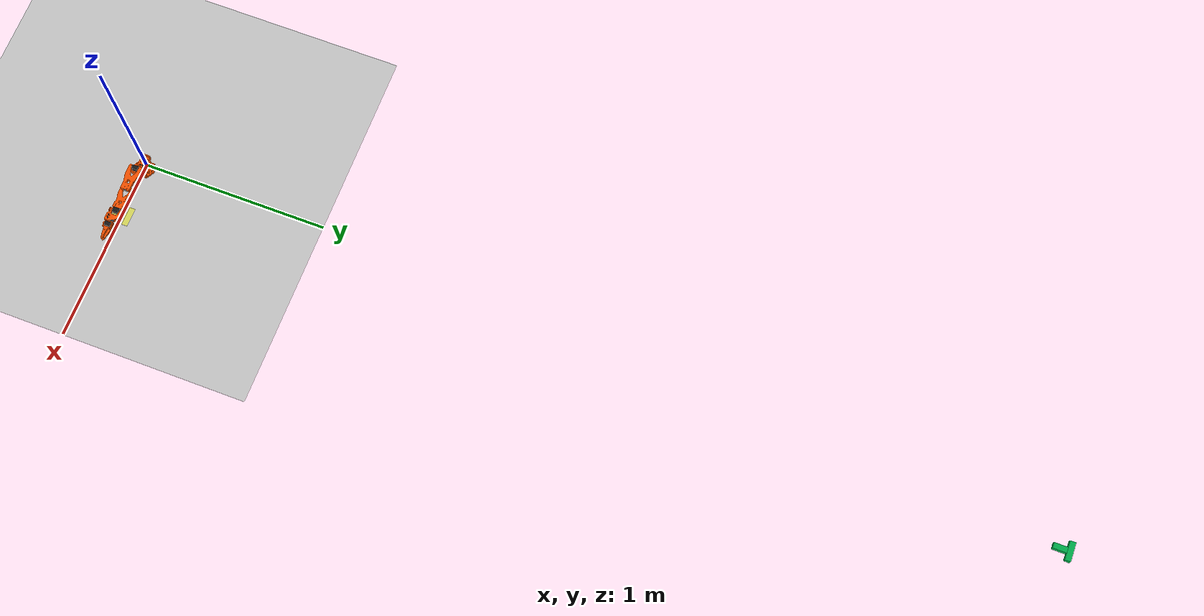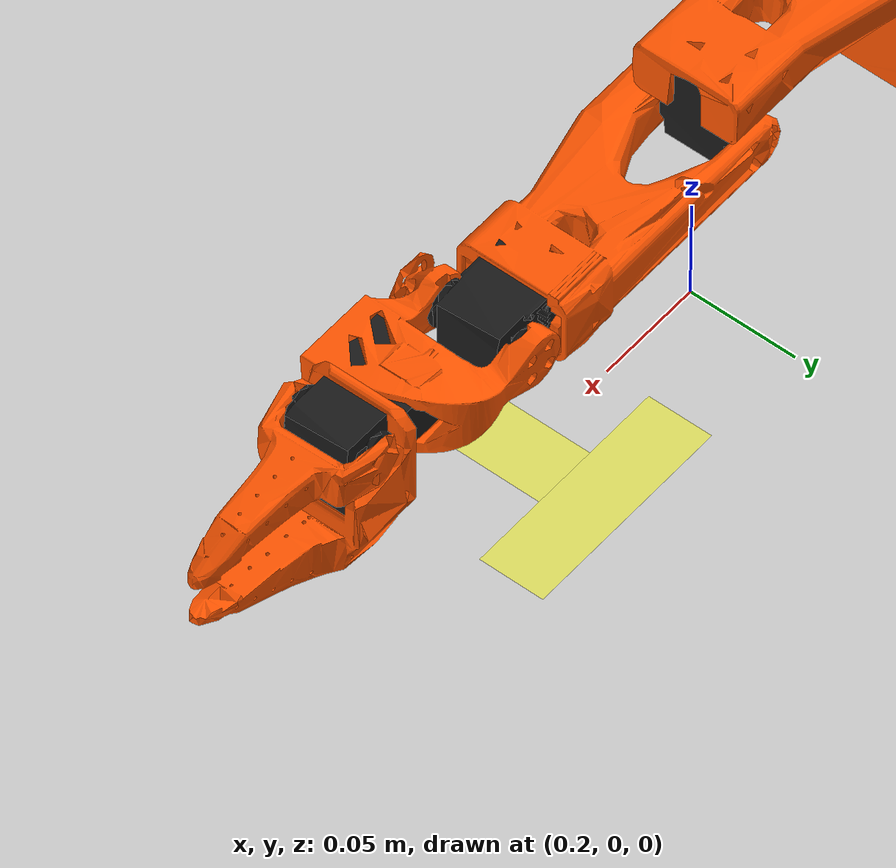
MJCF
<mujoco model="so_arm100 scene">
  <include file="so_arm100.xml"/>

  <statistic center="0 -0.2 0.1" extent="0.4"/>

  <visual>
    <headlight diffuse="0.6 0.6 0.6" ambient="0.3 0.3 0.3" specular="0 0 0"/>
    <rgba haze="0.15 0.25 0.35 1"/>
    <global azimuth="140" elevation="-30"/>
  </visual>

  <asset>
    <texture type="skybox" builtin="gradient" rgb1="0.3 0.5 0.7" rgb2="0 0 0" width="512" height="3072"/>
    <texture type="2d" name="groundplane" builtin="checker" mark="edge" rgb1="0.2 0.3 0.4" rgb2="0.1 0.2 0.3"
      markrgb="0.8 0.8 0.8" width="300" height="300"/>
    <material name="groundplane" texture="groundplane" texuniform="true" texrepeat="5 5" reflectance="0.2"/>
  </asset>
    <worldbody>
    <light directional="true" diffuse=".8 .8 .8" specular=".2 .2 .2" pos="0 0 5" dir="0 0 -1"/>
    <geom name="floor" type="plane" size="1 1 .05" pos="0 0 0" rgba=".8 .8 .8 1"/>
    <body name="T_block" pos="0.3 5 0.05">
      <freejoint name="object_joint"/>
      <site name="T_block_anchor" pos="0 0 0" size="0.01" rgba="0 0 0 0"/>
      <geom name="T_top" type="box" size="0.05 0.015 0.015" pos="0 0.035 0" mass="0.05" rgba="0 0.7 0.3 1" friction="1 0.005 0.0001"/>
      <geom name="T_stem" type="box" size="0.015 0.035 0.015" pos="0 -0.015 0" mass="0.05" rgba="0 0.7 0.3 1" friction="1 0.005 0.0001"/>
    </body>
    <body name="T_sign" pos="0.3 0 0.001">
        <site name="T_sign_anchor" pos="0 0 0" size="0.01" rgba="0 0 0 0"/>
        <geom type="box" size="0.05 0.015 0.0001" pos="0 0.035 0" rgba="1 1 0 0.5" contype="0" conaffinity="0"/>
        <geom type="box" size="0.015 0.035 0.0001" pos="0 -0.015 0" rgba="1 1 0 0.5" contype="0" conaffinity="0"/>
    </body>
    <camera name="top_view" pos="0.3 0 0.8" euler="0 0 0"/>
    <camera name="side_view" pos="0.255 -0.7 0.047" xyaxes="0.999 0.047 0.000 0.010 -0.208 0.978"/>
    </worldbody>
    <keyframe>
      <key
      qpos="-0.0613246 -1.4005 1.38822 1.02204 0.0525885 -6.06139e-05 0.338473 -0.0361721 0.0149455 -0.596327 -1.52834e-17 2.02977e-17 0.802741"
      qvel="7.9597e-08 -1.55467e-05 2.83459e-05 -2.1386e-05 -2.43036e-07 1.02129e-06 1.41497e-17 -4.88137e-18 2.45565e-16 -9.98868e-16 3.92049e-17 6.26097e-34"
      ctrl="-0.0613246 -1.4005 1.38822 1.02204 0.0525885 0"
      />
    </keyframe>
</mujoco>

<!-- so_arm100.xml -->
<mujoco model="so_arm100">
  <compiler angle="radian" meshdir="assets/"/>

  <option cone="elliptic" impratio="10"/>

  <asset>
    <material name="orange" rgba="1.0 0.331 0.0 1.0" specular="0.1" shininess="0.1"/>
    <material name="black" rgba="0.1 0.1 0.1 1.0" specular="0.1" shininess="0.1"/>

    <mesh name="Base" file="Base.stl"/>
    <mesh name="Base_Motor" file="Base_Motor.stl"/>
    <mesh name="Rotation_Pitch" file="Rotation_Pitch.stl"/>
    <mesh name="Rotation_Pitch_Motor" file="Rotation_Pitch_Motor.stl"/>
    <mesh name="Upper_Arm" file="Upper_Arm.stl"/>
    <mesh name="Upper_Arm_Motor" file="Upper_Arm_Motor.stl"/>
    <mesh name="Lower_Arm" file="Lower_Arm.stl"/>
    <mesh name="Lower_Arm_Motor" file="Lower_Arm_Motor.stl"/>
    <mesh name="Wrist_Pitch_Roll" file="Wrist_Pitch_Roll.stl"/>
    <mesh name="Wrist_Pitch_Roll_Motor" file="Wrist_Pitch_Roll_Motor.stl"/>
    <mesh name="Fixed_Jaw" file="Fixed_Jaw.stl"/>
    <mesh name="Fixed_Jaw_Motor" file="Fixed_Jaw_Motor.stl"/>
    <mesh name="Fixed_Jaw_Collision_1" file="Fixed_Jaw_Collision_1.stl"/>
    <mesh name="Fixed_Jaw_Collision_2" file="Fixed_Jaw_Collision_2.stl"/>
    <mesh name="Moving_Jaw" file="Moving_Jaw.stl"/>
    <mesh name="Moving_Jaw_Collision_1" file="Moving_Jaw_Collision_1.stl"/>
    <mesh name="Moving_Jaw_Collision_2" file="Moving_Jaw_Collision_2.stl"/>
    <mesh name="Moving_Jaw_Collision_3" file="Moving_Jaw_Collision_3.stl"/>
  </asset>

  <default>
    <default class="so_arm100">
      <joint frictionloss="0.1" armature="0.1"/>
      <position kp="50" dampratio="1" forcerange="-35 35" ctrlrange="-3.14158 3.14158"/>
      <default class="Rotation">
        <joint axis="0 1 0" range="-2.2 2.2"/>
      </default>
      <default class="Pitch">
        <joint axis="1 0 0" range="-3.14158 0.2"/>
      </default>
      <default class="Elbow">
        <joint axis="1 0 0" range="0 3.14158"/>
      </default>
      <default class="Wrist_Pitch">
        <joint axis="1 0 0" range="-2.0 1.8"/>
      </default>
      <default class="Wrist_Roll">
        <joint axis="0 1 0" range="-3.14158 3.14158"/>
      </default>
      <default class="Jaw">
        <joint axis="0 0 1" range="-0.2 2.0"/>
      </default>
      <default class="visual">
        <geom type="mesh" contype="0" conaffinity="0" density="0" group="2" material="orange"/>
        <default class="motor_visual">
          <geom material="black"/>
        </default>
      </default>
      <default class="collision">
        <geom group="3" type="mesh"/>
        <default class="finger_collision">
          <geom type="box" solimp="2 1 0.01" solref="0.01 1" friction="1 0.005 0.0001"/>
        </default>
      </default>
    </default>
  </default>

  <worldbody>
    <body name="Base" childclass="so_arm100" euler="0 0 1.57">
      <geom type="mesh" mesh="Base" class="visual"/>
      <geom type="mesh" mesh="Base_Motor" class="motor_visual"/>
      <geom type="mesh" mesh="Base" class="collision"/>
      <body name="Rotation_Pitch" pos="0 -0.0452 0.0165" quat="0.707105 0.707108 0 0">
        <inertial pos="-9.07886e-05 0.0590972 0.031089" quat="0.363978 0.441169 -0.623108 0.533504" mass="0.119226"
          diaginertia="5.94278e-05 5.89975e-05 3.13712e-05"/>
        <joint name="Rotation" class="Rotation"/>
        <geom type="mesh" mesh="Rotation_Pitch" class="visual"/>
        <geom type="mesh" mesh="Rotation_Pitch_Motor" class="motor_visual"/>
        <geom type="mesh" mesh="Rotation_Pitch" class="collision"/>
        <body name="Upper_Arm" pos="0 0.1025 0.0306" euler="1.57079 0 0">
          <inertial pos="-1.72052e-05 0.0701802 0.00310545" quat="0.50104 0.498994 -0.493562 0.50632" mass="0.162409"
            diaginertia="0.000213312 0.000167164 7.01522e-05"/>
          <joint name="Pitch" class="Pitch"/>
          <geom type="mesh" mesh="Upper_Arm" class="visual"/>
          <geom type="mesh" mesh="Upper_Arm_Motor" class="motor_visual"/>
          <geom type="mesh" mesh="Upper_Arm" class="collision"/>
          <body name="Lower_Arm" pos="0 0.11257 0.028" euler="-1.57079 0 0">
            <inertial pos="-0.00339604 0.00137796 0.0768007" quat="0.701995 0.0787996 0.0645626 0.704859"
              mass="0.147968" diaginertia="0.000138803 0.000107748 4.84242e-05"/>
            <joint name="Elbow" class="Elbow"/>
            <geom type="mesh" mesh="Lower_Arm" class="visual"/>
            <geom type="mesh" mesh="Lower_Arm_Motor" class="motor_visual"/>
            <geom type="mesh" mesh="Lower_Arm" class="collision"/>
            <body name="Wrist_Pitch_Roll" pos="0 0.0052 0.1349" euler="-1.57079 0 0">
              <inertial pos="-0.00852653 -0.0352279 -2.34622e-05" quat="-0.0522806 0.705235 0.0549524 0.704905"
                mass="0.0661321" diaginertia="3.45403e-05 2.39041e-05 1.94704e-05"/>
              <joint name="Wrist_Pitch" class="Wrist_Pitch"/>
              <geom type="mesh" mesh="Wrist_Pitch_Roll" class="visual"/>
              <geom type="mesh" mesh="Wrist_Pitch_Roll_Motor" class="motor_visual"/>
              <geom type="mesh" mesh="Wrist_Pitch_Roll" class="collision"/>
              <body name="Fixed_Jaw" pos="0 -0.0601 0" euler="0 1.57079 0">
                <inertial pos="0.00552377 -0.0280167 0.000483583" quat="0.41836 0.620891 -0.350644 0.562599"
                  mass="0.0929859" diaginertia="5.03136e-05 4.64098e-05 2.72961e-05"/>
                <joint name="Wrist_Roll" class="Wrist_Roll"/>
                <geom type="mesh" mesh="Fixed_Jaw" class="visual"/>
                <geom type="mesh" mesh="Fixed_Jaw_Motor" class="motor_visual"/>
                <geom type="mesh" mesh="Fixed_Jaw_Collision_1" class="collision"/>
                <geom type="mesh" mesh="Fixed_Jaw_Collision_2" class="collision"/>
                <geom class="finger_collision" name="fixed_jaw_pad_1" size="0.001 0.005 0.004" pos="0.0089 -0.1014 0"/>
                <geom class="finger_collision" name="fixed_jaw_pad_2" size="0.001 0.005 0.006" pos="0.0109 -0.0914 0"/>
                <geom class="finger_collision" name="fixed_jaw_pad_3" size="0.001 0.01 0.007" pos="0.0126 -0.0768 0"/>
                <geom class="finger_collision" name="fixed_jaw_pad_4" size="0.001 0.01 0.008" pos="0.0143 -0.0572 0"/>
                <body name="Moving_Jaw" pos="-0.0202 -0.0244 0" quat="1.34924e-11 -3.67321e-06 1 -3.67321e-06">
                  <inertial pos="-0.00161745 -0.0303473 0.000449646" quat="0.696562 0.716737 -0.0239844 -0.0227026"
                    mass="0.0202444" diaginertia="1.11265e-05 8.99651e-06 2.99548e-06"/>
                  <joint name="Jaw" class="Jaw"/>
                  <geom type="mesh" mesh="Moving_Jaw" class="visual"/>
                  <geom type="mesh" mesh="Moving_Jaw_Collision_1" class="collision"/>
                  <geom type="mesh" mesh="Moving_Jaw_Collision_2" class="collision"/>
                  <geom type="mesh" mesh="Moving_Jaw_Collision_3" class="collision"/>
                  <geom class="finger_collision" name="moving_jaw_pad_1" size="0.001 0.005 0.004" pos="-0.0113 -0.077 0"/>
                  <geom class="finger_collision" name="moving_jaw_pad_2" size="0.001 0.005 0.006" pos="-0.0093 -0.067 0"/>
                  <geom class="finger_collision" name="moving_jaw_pad_3" size="0.001 0.01 0.006" pos="-0.0073 -0.055 0"/>
                  <geom class="finger_collision" name="moving_jaw_pad_4" size="0.001 0.01 0.008" pos="-0.0073 -0.035 0"/>
                </body>
              </body>
            </body>
          </body>
        </body>
      </body>
    </body>
  </worldbody>

  <actuator>
    <position class="Rotation" name="Rotation" joint="Rotation"/>
    <position class="Pitch" name="Pitch" joint="Pitch"/>
    <position class="Elbow" name="Elbow" joint="Elbow"/>
    <position class="Wrist_Pitch" name="Wrist_Pitch" joint="Wrist_Pitch"/>
    <position class="Wrist_Roll" name="Wrist_Roll" joint="Wrist_Roll"/>
    <position class="Jaw" name="Jaw" joint="Jaw"/>
  </actuator>

  <contact>
    <exclude body1="Base" body2="Rotation_Pitch"/>
  </contact>

  <keyframe>
    <key name="home" qpos="0 -1.57079 1.57079 1.57079 -1.57079 0" ctrl="0 -1.57079 1.57079 1.57079 -1.57079 0"/>
  </keyframe>
</mujoco>
